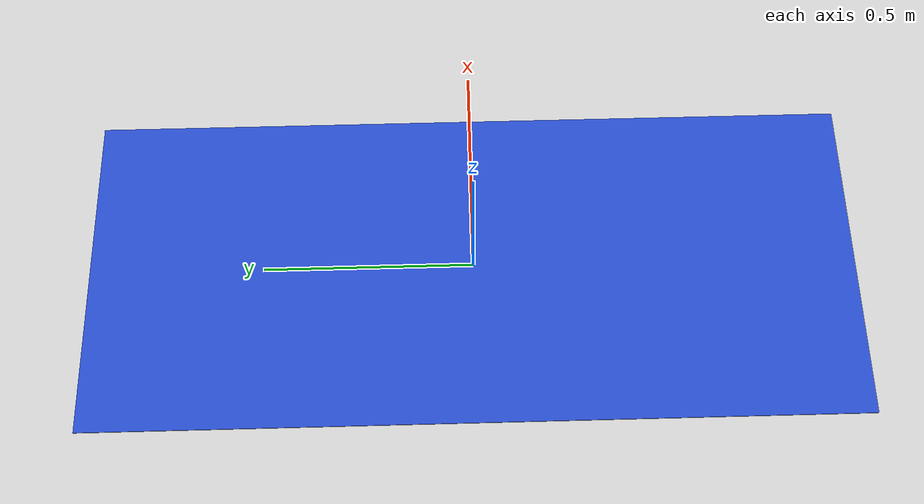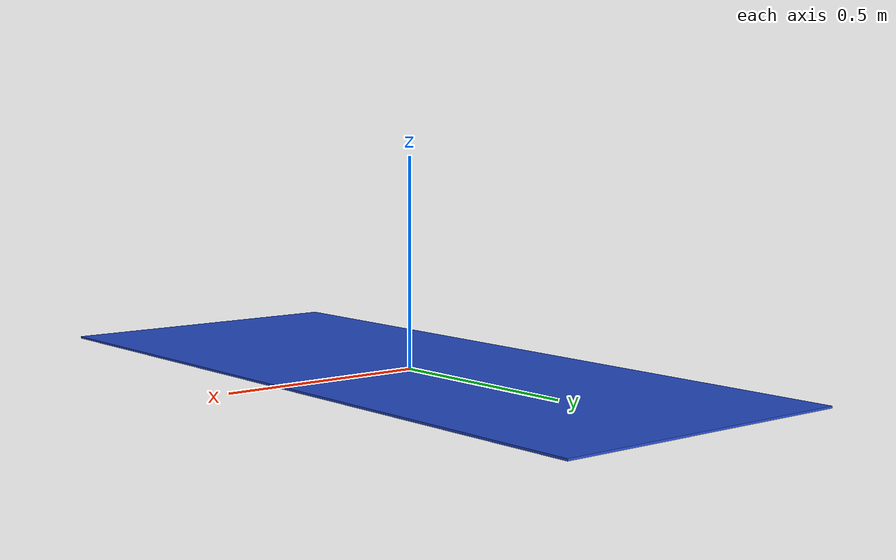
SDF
<?xml version="1.0" ?>
<sdf version="1.5">
  <model name='sherdmat'>
    <pose frame=''>0 0 0 0 0 0</pose>
    <static>true</static>
    <link name='mat_link'>
      <pose frame=''>0 0 0.0025 0 0 0</pose>
      <inertial>
        <mass>5</mass>
        <inertia>
          <ixx>5</ixx>
          <ixy>0</ixy>
          <ixz>0</ixz>
          <iyy>5</iyy>
          <iyz>0</iyz>
          <izz>5</izz>
        </inertia>
      </inertial>
      <collision name='collision'>
        <geometry>
          <box>
            <size>0.76 1.83 0.005</size>
          </box>
        </geometry>
        <max_contacts>10</max_contacts>
        <surface>
          <contact>
            <ode/>
          </contact>
          <bounce/>
          <friction>
            <torsional>
              <coefficient>1</coefficient> <!-- added to try to prevent stone model from sliding. Maybe not be necessary -->
            </torsional>
            <ode>
              <mu>1.0</mu>
              <mu2>1.0</mu2>
              <fdir1>1 0 0</fdir1> <!-- important to keep stone model from sliding -->
            </ode>
          </friction>
        </surface>
      </collision>
      <visual name='visual'>
        <material>
          <script>
            <uri>file://media/materials/scripts/gazebo.material</uri>
            <name>Gazebo/Blue</name>
          </script>
        </material>
        <geometry>
          <box>
            <size>0.76 1.83 0.005</size>
          </box>
        </geometry>
      </visual>
      <self_collide>0</self_collide>
      <gravity>1</gravity>
    </link>
  </model>
</sdf>
